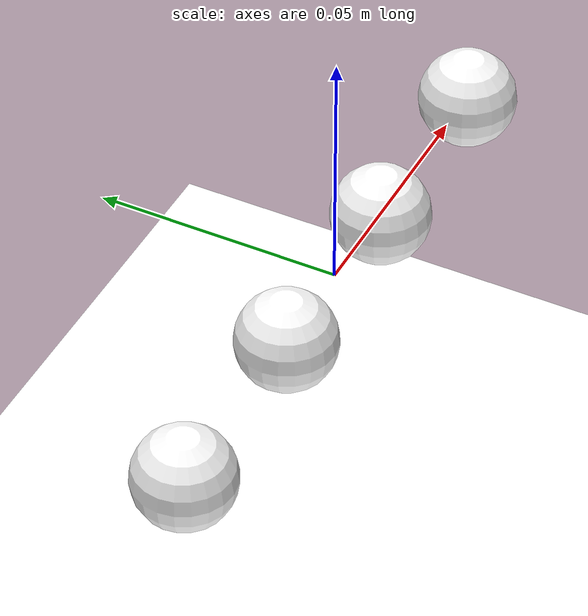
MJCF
<mujoco model="PID Controllers">
  <size memory="200M"/>

  <visual>
    <headlight diffuse=".2 .2 .2"/>
    <global elevation="-30" />
  </visual>
  <statistic extent="0.50" />

  <extension>
    <plugin plugin="mujoco.pid">
      <!-- pure proportional gain, bounces up and down -->
      <instance name="pid1">
        <config key="kp" value="4.0"/>
      </instance>
      <!-- PD controller - settles below setpoint -->
      <instance name="pid2">
        <config key="kp" value="5.0"/>
        <config key="kd" value="0.5"/>
      </instance>
      <!-- PID controller - reaches setpoint -->
      <instance name="pid3">
        <config key="kp" value="4.0"/>
        <config key="ki" value="5.0"/>
        <config key="kd" value="0.5"/>
      </instance>
      <!-- PID controller with clamped I term. -->
      <instance name="pid4">
        <config key="kp" value="4.0"/>
        <config key="ki" value="5.0"/>
        <config key="kd" value="0.5"/>
        <config key="imax" value=".5"/>
      </instance>
    </plugin>
  </extension>

  <default>
    <geom type="sphere" size="0.01" rgba="1 1 1 1" />
  </default>

  <worldbody>
    <light pos="0.4 -.15 .6" dir="-1 .5 -1" diffuse=".7 .7 .7"/>
    <light pos="-.4 -.15 .6" dir="1 .5 -1" diffuse=".7 .7 .7"/>
    <geom name="floor" type="plane" pos="0 0 -0.1" size="0 0 100" />
    <body pos="-0.06 0 0">
      <joint name="j1" type="slide" axis="0 0 1" />
      <geom/>
    </body>
    <body pos="-0.02 0 0" >
      <joint name="j2" type="slide" axis="0 0 1" />
      <geom/>
    </body>
    <body pos="0.02 0 0" >
      <joint name="j3" type="slide" axis="0 0 1" />
      <geom/>
    </body>
    <body pos="0.06 0 0" >
      <joint name="j4" type="slide" axis="0 0 1" />
      <geom/>
    </body>
  </worldbody>
  <actuator>
    <plugin joint="j1" plugin="mujoco.pid" instance="pid1" ctrlrange="0 0.15" />
    <plugin joint="j2" plugin="mujoco.pid" instance="pid2" ctrlrange="0 0.15" />
    <plugin joint="j3" plugin="mujoco.pid" instance="pid3" ctrlrange="0 0.15" actdim="1" />
    <plugin joint="j4" plugin="mujoco.pid" instance="pid4" ctrlrange="0 0.15" actdim="1" />
  </actuator>
</mujoco>
